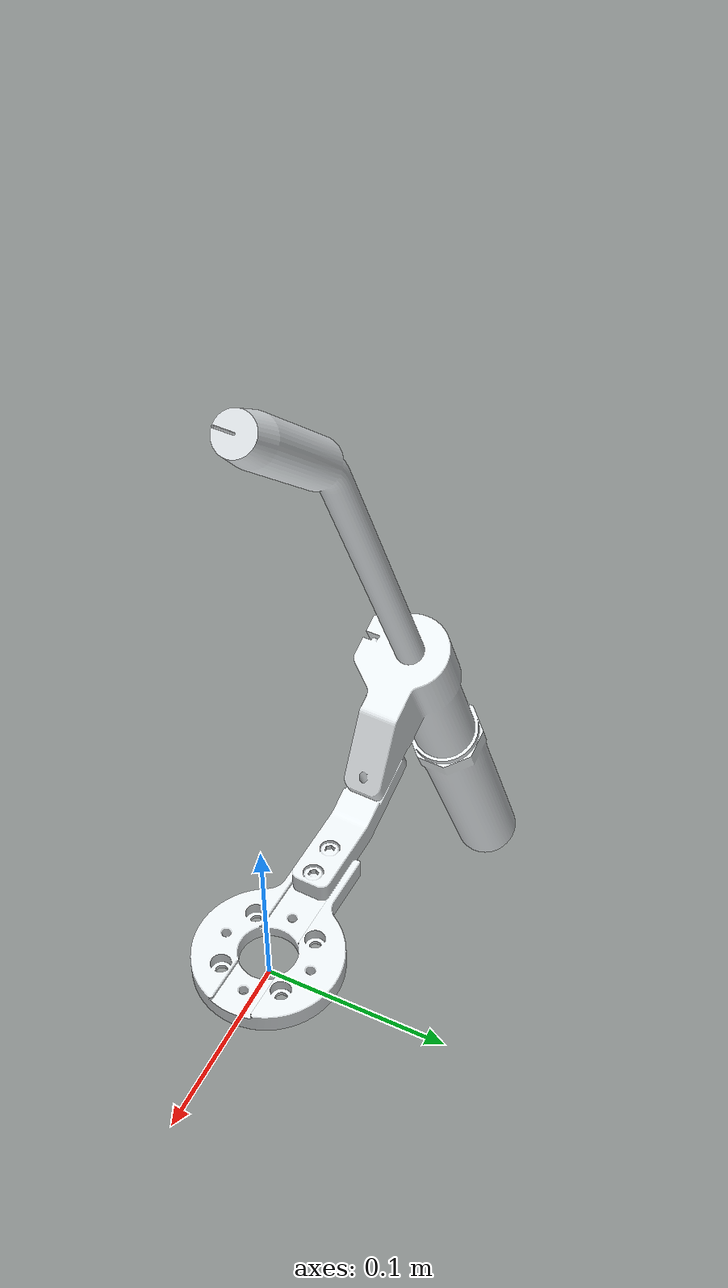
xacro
<?xml version="1.0" encoding="utf-8"?>
<robot xmlns:xacro="http://www.ros.org/wiki/xacro">

  <link name="welding_gun_link">
    <visual>
      <origin
        xyz="0 0 0.01"
        rpy="0 0 0" />
      <geometry>
        <mesh filename="package://fr3_description/meshes/fr3/tool_link.STL" scale="0.001 0.001 0.001" />
      </geometry>
      <material name="">
        <color rgba="0.89804 0.91765 0.92941 1" />
      </material>
    </visual>
    <collision>
      <origin
        xyz="0 0 0.01"
        rpy="0 0 0" />
      <geometry>
        <mesh filename="package://fr3_description/meshes/fr3/tool_link.STL" scale="0.001 0.001 0.001"/>
      </geometry>
    </collision>
  </link>

  <link name="welding_gun_footprint_link"/>
  <joint name="end_virtual_joint" type="fixed">
        <parent link="welding_gun_link" />
        <child link="welding_gun_footprint_link" />
        <origin xyz="0 0 0.37" rpy="0 0.8 0" />
  </joint>

</robot>
